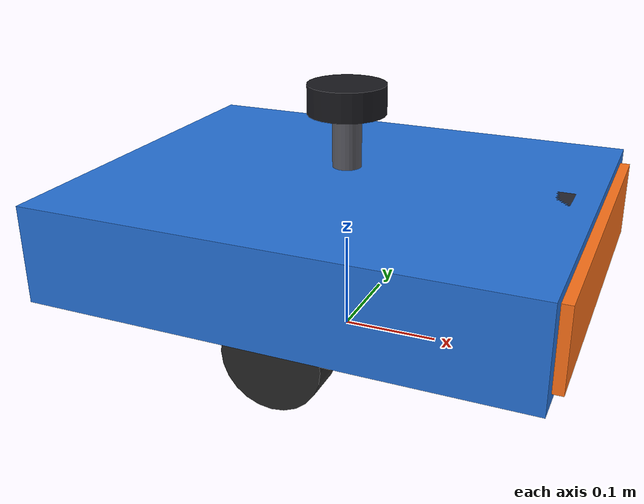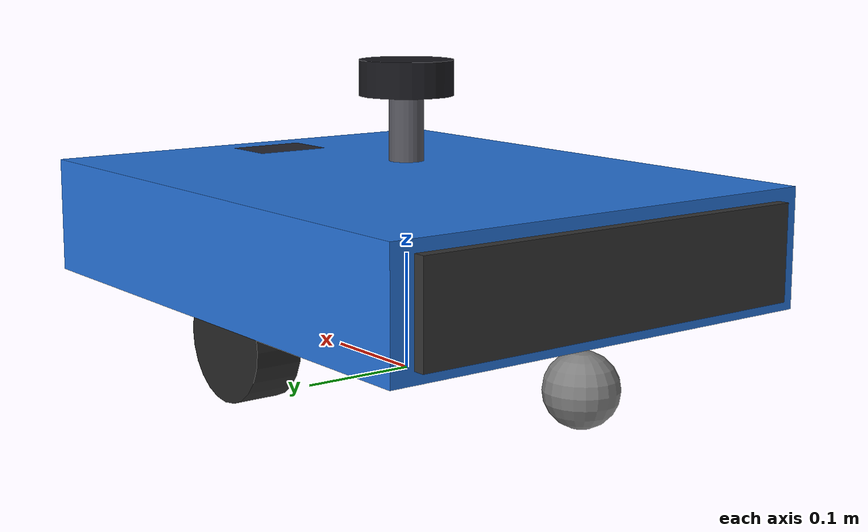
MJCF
<!-- Differential-drive mobile base (+X forward, +Y left, +Z up). Included by scene.xml. -->
<mujoco>
  <compiler angle="degree"/>

  <default>
    <joint damping="0.2"/>
    <geom friction="1.2 0.02 0.002" condim="3"/>
  </default>

  <worldbody>
    <body name="base_link" pos="0 0 0.12">
      <!-- Planar base: world x/y translation + yaw. -->
      <joint name="slide_x" type="slide" axis="1 0 0"/>
      <joint name="slide_y" type="slide" axis="0 1 0"/>
      <joint name="yaw" type="hinge" axis="0 0 1"/>

      <geom name="chassis" type="box" size="0.25 0.2 0.05" mass="8" rgba="0.15 0.45 0.85 1"/>
      <!-- Asymmetric cues: orange front / dark rear -->
      <geom name="front_bumper" type="box" pos="0.24 0 0" size="0.02 0.18 0.04"
        rgba="1 0.45 0.1 1" contype="0" conaffinity="0"/>
      <geom name="rear_bumper" type="box" pos="-0.24 0 0" size="0.02 0.18 0.04"
        rgba="0.2 0.2 0.2 1" contype="0" conaffinity="0"/>
      <geom name="front_light" type="sphere" pos="0.23 0 0.02" size="0.015"
        rgba="0.2 0.9 0.3 1" contype="0" conaffinity="0"/>
      <geom name="rear_light" type="sphere" pos="-0.23 0 0.02" size="0.015"
        rgba="0.9 0.15 0.15 1" contype="0" conaffinity="0"/>

      <site name="imu_link" pos="0 0 0" size="0.01"/>

      <body name="lidar_link" pos="0 0 0.09">
        <geom name="lidar_mast" type="cylinder" size="0.015 0.03" rgba="0.35 0.35 0.38 1"
          contype="0" conaffinity="0"/>
        <geom name="lidar_head" type="cylinder" size="0.04 0.015" pos="0 0 0.04"
          rgba="0.1 0.1 0.12 1" contype="0" conaffinity="0"/>
        <site name="lidar" pos="0 0 0.04" size="0.01"/>
      </body>

      <body name="camera_link" pos="0.2 0 0.03">
        <geom name="camera_housing" type="box" size="0.025 0.035 0.02" rgba="0.15 0.15 0.18 1"
          contype="0" conaffinity="0"/>
        <!-- Looks along body +X (forward). -->
        <camera name="front_camera" pos="0.02 0 0" xyaxes="0 -1 0 0 0 1" fovy="70"/>
      </body>

      <body name="left_wheel" pos="0 0.16 -0.07">
        <joint name="left_wheel_joint" type="hinge" axis="0 1 0"/>
        <geom name="left_wheel_geom" type="cylinder" size="0.05 0.02" mass="0.5"
          quat="0.707107 0.707107 0 0" contype="0" conaffinity="0" rgba="0.15 0.15 0.15 1"/>
      </body>

      <body name="right_wheel" pos="0 -0.16 -0.07">
        <joint name="right_wheel_joint" type="hinge" axis="0 1 0"/>
        <geom name="right_wheel_geom" type="cylinder" size="0.05 0.02" mass="0.5"
          quat="0.707107 0.707107 0 0" contype="0" conaffinity="0" rgba="0.15 0.15 0.15 1"/>
      </body>

      <body name="caster" pos="-0.22 0 -0.09">
        <geom name="caster_geom" type="sphere" size="0.03" mass="0.1" contype="0" conaffinity="0"
          rgba="0.5 0.5 0.5 1"/>
      </body>
    </body>
  </worldbody>

  <actuator>
    <velocity name="drive_x" joint="slide_x" kv="80" ctrlrange="-2 2"/>
    <velocity name="drive_y" joint="slide_y" kv="80" ctrlrange="-2 2"/>
    <velocity name="drive_yaw" joint="yaw" kv="40" ctrlrange="-3 3"/>
  </actuator>

  <sensor>
    <accelerometer name="imu_accel" site="imu_link"/>
    <gyro name="imu_gyro" site="imu_link"/>
  </sensor>
</mujoco>
